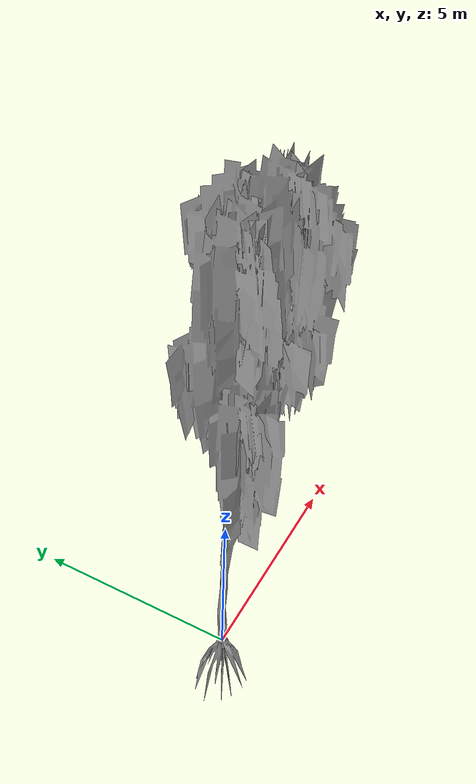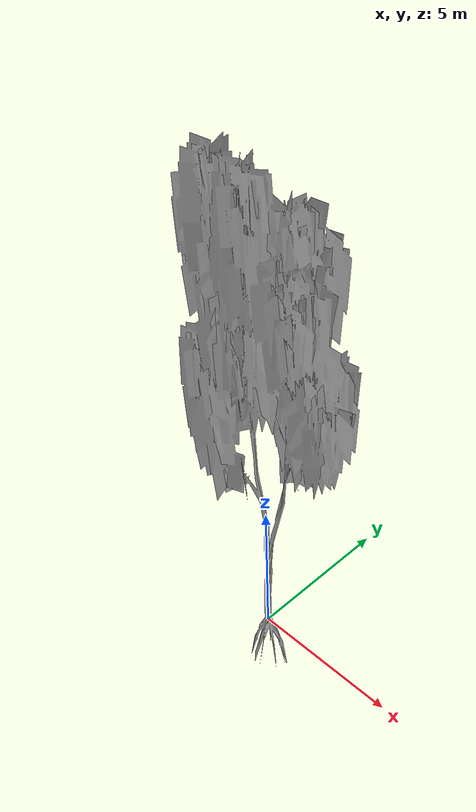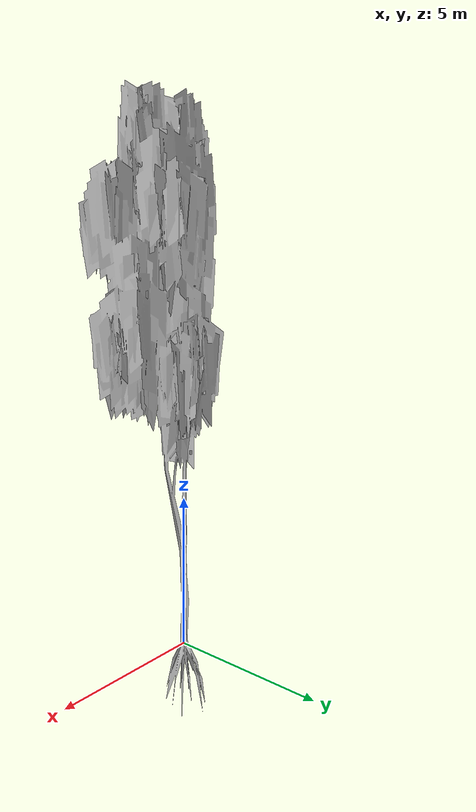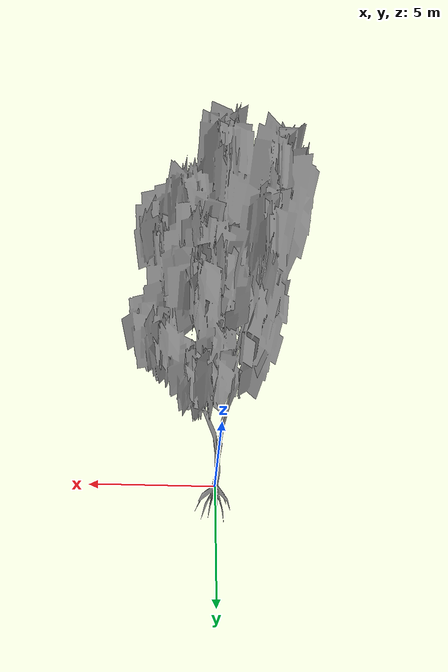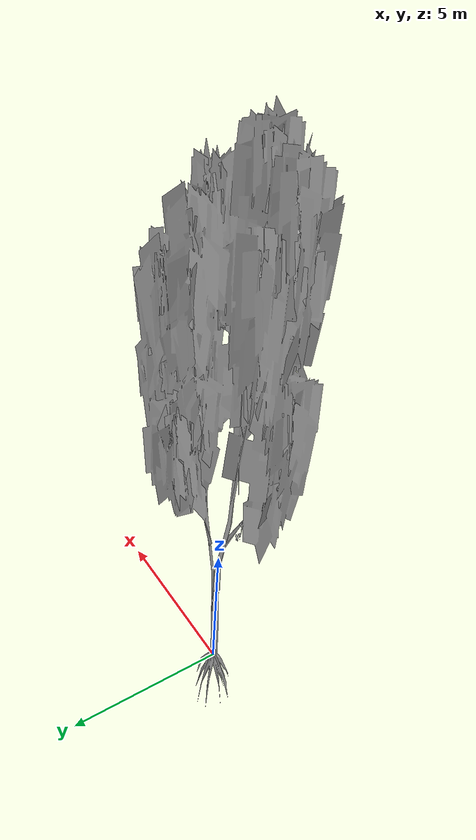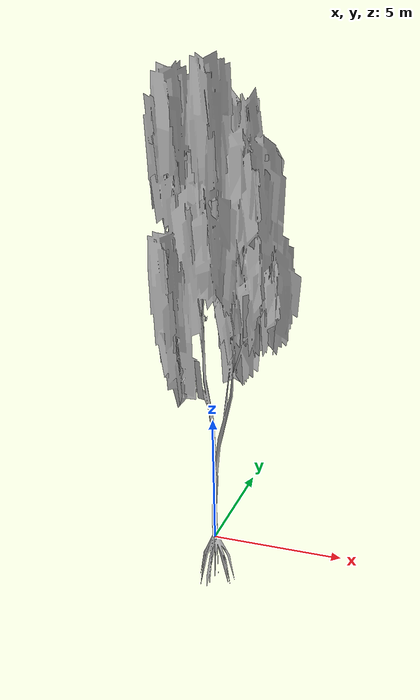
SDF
<?xml version="1.0" ?>
<sdf version="1.6">
  <model name="tree_eu3">
    <static>1</static>
    <link name="link">
      <collision name="collision">
        <geometry>
          <mesh>
            <uri>model://tree_eu3/meshes/OC12_3.obj</uri>            <scale>0.5 0.5 1.5</scale>
          </mesh>
        </geometry>
      </collision>
      <visual name="branch">
        <geometry>
          <mesh>
            <uri>model://tree_eu3/meshes/OC12_3.obj</uri>            <scale>0.5 0.5 1.5</scale>
          </mesh>
        </geometry>
        <cast_shadows>1</cast_shadows>
      </visual>
    </link>
  </model>
</sdf>
